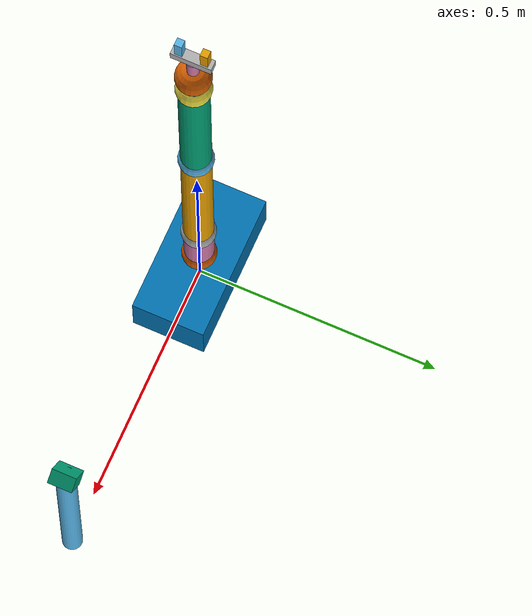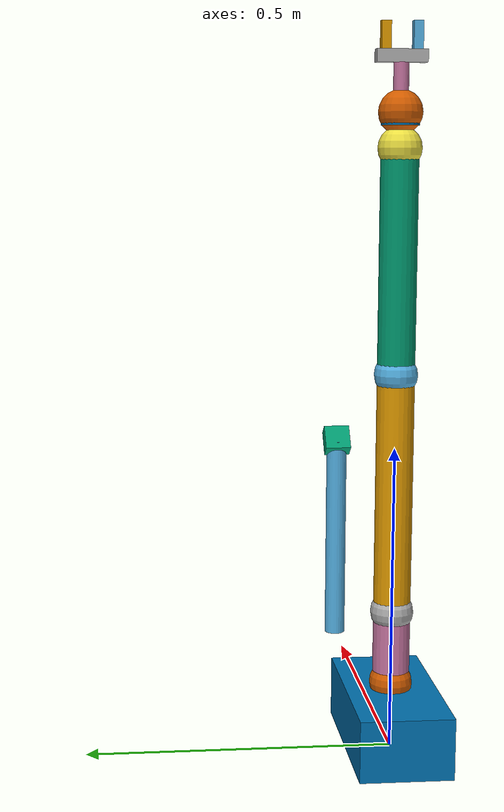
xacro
<?xml version="1.0"?>
<robot name="arm_robot" xmlns:xacro="http://www.ros.org/wiki/xacro">

    <link name="world"/>
    <joint name="world_joint" type="fixed">
        <parent link="world"/>
        <child link="robot_base"/>
        <origin xyz="0 0 0.05" rpy="0 0 0"/>
    </joint>

    <!-- Camera on a stand, fixed in the world, looking at the arm. -->
    <xacro:include filename="camera.xacro" />

    <link name="robot_base">
        <visual>
            <geometry>
                <box size="0.3 0.15 0.1"/>
            </geometry>
        </visual>
        <collision>
            <geometry>
                <box size="0.3 0.15 0.1"/>
            </geometry>
        </collision>
        <inertial>
            <mass value="0.5"/>
            <inertia ixx="0.001354" ixy="0" ixz="0"
                                    iyy="0.004167" iyz="0"
                                                   izz="0.004688"/>
        </inertial>
    </link>

    <link name="spin_link">
        <visual>
            <geometry>
                <sphere radius="0.035"/>
            </geometry>
        </visual>
        <collision>
            <geometry>
                <sphere radius="0.02"/>
            </geometry>
        </collision>
        <inertial>
            <mass value="0.05"/>
            <inertia ixx="0.0000245" ixy="0" ixz="0"
                                     iyy="0.0000245" iyz="0"
                                                     izz="0.0000245"/>
        </inertial>
    </link>

    <joint name="spin_main_joint" type="revolute">
        <parent link="robot_base"/>
        <child link="spin_link"/>
        <origin xyz="0 0 0.06" rpy="0 0 0"/>
        <axis xyz="0 0 1"/>
        <limit lower="-3.14159" upper="3.14159" effort="10" velocity="1"/>
        <dynamics damping="0.5" friction="0.1"/>
    </joint>

    <link name="spin_arm">
        <visual>
            <origin xyz="0 0 0.05" rpy="0 0 0"/>
            <geometry>
                <cylinder radius="0.03" length="0.1"/>
            </geometry>
        </visual>
        <collision>
            <origin xyz="0 0 0.04" rpy="0 0 0"/>
            <geometry>
                <cylinder radius="0.03" length="0.08"/>
            </geometry>
        </collision>
        <inertial>
            <origin xyz="0 0 0.05"/>
            <mass value="0.05"/>
            <inertia ixx="0.0000529" ixy="0" ixz="0"
                                     iyy="0.0000529" iyz="0"
                                                     izz="0.0000225"/>
        </inertial>
    </link>

    <!-- passive structural joint — always at 0, fixed for simulation -->
    <joint name="spin_arm_joint" type="fixed">
        <parent link="spin_link"/>
        <child link="spin_arm"/>
        <origin xyz="0 0 0.02" rpy="0 0 0"/>
    </joint>

    <link name="shoulder_link">
        <visual>
            <geometry>
                <sphere radius="0.035"/>
            </geometry>
        </visual>
        <collision>
            <geometry>
                <sphere radius="0.02"/>
            </geometry>
        </collision>
        <inertial>
            <mass value="0.05"/>
            <inertia ixx="0.0000245" ixy="0" ixz="0"
                                     iyy="0.0000245" iyz="0"
                                                     izz="0.0000245"/>
        </inertial>
    </link>

    <joint name="shoulder_main_joint" type="revolute">
        <parent link="spin_arm"/>
        <child link="shoulder_link"/>
        <origin xyz="0 0 0.1" rpy="0 0 0"/>
        <axis xyz="0 1 0"/>
        <limit lower="-1.57" upper="1.57" effort="10" velocity="1"/>
        <dynamics damping="0.5" friction="0.1"/>
    </joint>

    <link name="shoulder_arm">
        <visual>
            <origin xyz="0 0 0.15" rpy="0 0 0"/>
            <geometry>
                <cylinder radius="0.03" length="0.4"/>
            </geometry>
        </visual>
        <collision>
            <origin xyz="0 0 0.165" rpy="0 0 0"/>
            <geometry>
                <cylinder radius="0.03" length="0.33"/>
            </geometry>
        </collision>
        <inertial>
            <origin xyz="0 0 0.15"/>
            <mass value="0.15"/>
            <inertia ixx="0.002034" ixy="0" ixz="0"
                                    iyy="0.002034" iyz="0"
                                                   izz="0.0000675"/>
        </inertial>
    </link>

    <!-- passive structural joint — always at 0, fixed for simulation -->
    <joint name="shoulder_arm_joint" type="fixed">
        <parent link="shoulder_link"/>
        <child link="shoulder_arm"/>
        <origin xyz="0 0 0.04" rpy="0 0 0"/>
    </joint>

    <link name="elbow_link">
        <visual>
            <geometry>
                <sphere radius="0.035"/>
            </geometry>
        </visual>
        <collision>
            <geometry>
                <sphere radius="0.02"/>
            </geometry>
        </collision>
        <inertial>
            <mass value="0.05"/>
            <inertia ixx="0.0000245" ixy="0" ixz="0"
                                     iyy="0.0000245" iyz="0"
                                                     izz="0.0000245"/>
        </inertial>
    </link>

    <joint name="elbow_main_joint" type="revolute">
        <parent link="shoulder_arm"/>
        <child link="elbow_link"/>
        <origin xyz="0 0 0.35" rpy="0 0 0"/>
        <axis xyz="0 1 0"/>
        <limit lower="-2.356" upper="2.356" effort="10" velocity="1"/>
        <dynamics damping="0.5" friction="0.1"/>
    </joint>

    <link name="elbow_arm">
        <visual>
            <origin xyz="0 0 0.15" rpy="0 0 0"/>
            <geometry>
                <cylinder radius="0.03" length="0.35"/>
            </geometry>
        </visual>
        <collision>
            <origin xyz="0 0 0.15" rpy="0 0 0"/>
            <geometry>
                <cylinder radius="0.03" length="0.30"/>
            </geometry>
        </collision>
        <inertial>
            <origin xyz="0 0 0.15"/>
            <mass value="0.12"/>
            <inertia ixx="0.001252" ixy="0" ixz="0"
                                    iyy="0.001252" iyz="0"
                                                   izz="0.000054"/>
        </inertial>
    </link>

    <!-- passive structural joint — always at 0, fixed for simulation -->
    <joint name="elbow_arm_joint" type="fixed">
        <parent link="elbow_link"/>
        <child link="elbow_arm"/>
        <origin xyz="0 0 0.035" rpy="0 0 0"/>
    </joint>

     <link name="forearm_link">
        <visual>
            <geometry>
                <sphere radius="0.035"/>
            </geometry>
        </visual>
        <collision>
            <geometry>
                <sphere radius="0.02"/>
            </geometry>
        </collision>
        <inertial>
            <mass value="0.05"/>
            <inertia ixx="0.0000245" ixy="0" ixz="0"
                                     iyy="0.0000245" iyz="0"
                                                     izz="0.0000245"/>
        </inertial>
    </link>

    <joint name="forearm_main_joint" type="revolute">
        <parent link="elbow_arm"/>
        <child link="forearm_link"/>
        <origin xyz="0 0 0.32" rpy="0 0 0"/>
        <axis xyz="0 0 1"/>
        <limit lower="-3.14159" upper="3.14159" effort="10" velocity="1"/>
        <dynamics damping="0.5" friction="0.1"/>
    </joint>

    <link name="forearm_arm">
        <visual>
            <origin xyz="0 0 0.01" rpy="0 0 0"/>
            <geometry>
                <cylinder radius="0.03" length="0.02"/>
            </geometry>
        </visual>
        <collision>
            <origin xyz="0 0 0.01" rpy="0 0 0"/>
            <geometry>
                <cylinder radius="0.03" length="0.02"/>
            </geometry>
        </collision>
        <inertial>
            <origin xyz="0 0 0.01"/>
            <mass value="0.02"/>
            <inertia ixx="0.0000245" ixy="0" ixz="0"
                                     iyy="0.0000245" iyz="0"
                                                     izz="0.0000245"/>
        </inertial>
    </link>

    <joint name="forearm_arm_joint" type="fixed">
        <parent link="forearm_link"/>
        <child link="forearm_arm"/>
        <origin xyz="0 0 0.035" rpy="0 0 0"/>
    </joint>

    <link name="wrist_link">
        <visual>
            <geometry>
                <sphere radius="0.035"/>
            </geometry>
        </visual>
        <collision>
            <geometry>
                <sphere radius="0.02"/>
            </geometry>
        </collision>
        <inertial>
            <mass value="0.03"/>
            <inertia ixx="0.0000147" ixy="0" ixz="0"
                                     iyy="0.0000147" iyz="0"
                                                     izz="0.0000147"/>
        </inertial>
    </link>

    <joint name="wrist_main_joint" type="revolute">
        <parent link="forearm_arm"/>
        <child link="wrist_link"/>
        <origin xyz="0 0 0.02" rpy="0 0 0"/>
        <axis xyz="0 1 0"/>
        <limit lower="-2.094" upper="2.094" effort="10" velocity="1"/>
        <dynamics damping="0.5" friction="0.1"/>
    </joint>

    <link name="wrist_arm">
        <visual>
            <origin xyz="0 0 0.025" rpy="0 0 0"/>
            <geometry>
                <cylinder radius="0.012" length="0.05"/>
            </geometry>
        </visual>
        <collision>
            <origin xyz="0 0 0.025" rpy="0 0 0"/>
            <geometry>
                <cylinder radius="0.012" length="0.05"/>
            </geometry>
        </collision>
        <inertial>
            <origin xyz="0 0 0.025"/>
            <mass value="0.02"/>
            <inertia ixx="0.000004887" ixy="0" ixz="0"
                                       iyy="0.000004887" iyz="0"
                                                         izz="0.00000144"/>
        </inertial>
    </link>

    <!-- passive structural joint — always at 0, fixed for simulation -->
    <joint name="wrist_arm_joint" type="revolute">
        <parent link="wrist_link"/>
        <child link="wrist_arm"/>
        <origin xyz="0 0 0.025" rpy="0 0 0"/>
        <axis xyz="0 0 1"/>
        <limit lower="-3.14159" upper="3.14159" effort="10" velocity="1"/>
        <dynamics damping="0.5" friction="0.1"/>
    </joint>

    <link name="gripper_base">
        <visual>
            <origin xyz="0 0 0.05" rpy="0 0 0"/>
            <geometry>
                <box size="0.02 0.08 0.02"/>
            </geometry>
        </visual>
        <collision>
            <origin xyz="0 0 0.05" rpy="0 0 0"/>
            <geometry>
                <box size="0.02 0.02 0.02"/>
            </geometry>
        </collision>
        <inertial>
            <origin xyz="0 0 0.05"/>
            <mass value="0.03"/>
            <inertia ixx="0.000017" ixy="0" ixz="0"
                                    iyy="0.000002" iyz="0"
                                                   izz="0.000017"/>
        </inertial>
    </link>

    <joint name="gripper_base_joint" type="fixed">
        <parent link="wrist_arm"/>
        <child link="gripper_base"/>
        <origin xyz="0 0 0.01" rpy="0 0 0"/>
    </joint>

    <link name="gripper_left_finger">
        <visual>
            <origin xyz="0 0.025 0.035" rpy="0 0 0"/>
            <geometry>
                <box size="0.015 0.015 0.045"/>
            </geometry>
        </visual>
        <collision>
            <origin xyz="0 0.025 0.02" rpy="0 0 0"/>
            <geometry>
                <box size="0.015 0.015 0.045"/>
            </geometry>
        </collision>
        <inertial>
            <origin xyz="0 0.025 0.035"/>
            <mass value="0.01"/>
            <inertia ixx="0.000001875" ixy="0" ixz="0"
                                       iyy="0.000001875" iyz="0"
                                                         izz="0.000000375"/>
        </inertial>
    </link>

    <joint name="gripper_left_finger_joint" type="prismatic">
        <parent link="gripper_base"/>
        <child link="gripper_left_finger"/>
        <origin xyz="0 0 0.045" rpy="0 0 0"/>
        <axis xyz="0 1 0"/>
        <limit lower="-0.04" upper="0.04" effort="5" velocity="0.1"/>
        <dynamics damping="0.1" friction="0.05"/>
    </joint>

    <link name="gripper_right_finger">
        <visual>
            <origin xyz="0 -0.025 0.035" rpy="0 0 0"/>
            <geometry>
                <box size="0.015 0.015 0.045"/>
            </geometry>
        </visual>
        <collision>
            <origin xyz="0 -0.025 0.035" rpy="0 0 0"/>
            <geometry>
                <box size="0.015 0.015 0.045"/>
            </geometry>
        </collision>
        <inertial>
            <origin xyz="0 -0.025 0.035"/>
            <mass value="0.01"/>
            <inertia ixx="0.000001875" ixy="0" ixz="0"
                                       iyy="0.000001875" iyz="0"
                                                         izz="0.000000375"/>
        </inertial>
    </link>

    <joint name="gripper_right_finger_joint" type="prismatic">
        <parent link="gripper_base"/>
        <child link="gripper_right_finger"/>
        <origin xyz="0 0 0.045" rpy="0 0 0"/>
        <axis xyz="0 -1 0"/>
        <limit lower="-0.04" upper="0.04" effort="5" velocity="0.1"/>
        <dynamics damping="0.1" friction="0.05"/>
    </joint>

    <!-- ros2_control hardware interface (used by Gazebo simulation)  -->
    <ros2_control name="GazeboSystem" type="system">
        <hardware>
            <!-- Gazebo Classic 11 hardware interface (was mock_components/GenericSystem for RViz-only) -->
            <plugin>gazebo_ros2_control/GazeboSystem</plugin>
        </hardware>
        <joint name="shoulder_main_joint">
            <command_interface name="position">
                <param name="min">-1.57</param>
                <param name="max">1.57</param>
            </command_interface>
            <state_interface name="position"/>
            <state_interface name="velocity"/>
        </joint>
        <joint name="elbow_main_joint">
            <command_interface name="position">
                <param name="min">-2.356</param>
                <param name="max">2.356</param>
            </command_interface>
            <state_interface name="position"/>
            <state_interface name="velocity"/>
        </joint>
        <joint name="wrist_main_joint">
            <command_interface name="position">
                <param name="min">-2.094</param>
                <param name="max">2.094</param>
            </command_interface>
            <state_interface name="position"/>
            <state_interface name="velocity"/>
        </joint>
        <joint name="spin_main_joint">
            <command_interface name="position">
                <param name="min">-3.14159</param>
                <param name="max">3.14159</param>
            </command_interface>
            <state_interface name="position"/>
            <state_interface name="velocity"/>
        </joint>
        <joint name="forearm_main_joint">
            <command_interface name="position">
                <param name="min">-3.14159</param>
                <param name="max">3.14159</param>
            </command_interface>
            <state_interface name="position"/>
            <state_interface name="velocity"/>
        </joint>
        <joint name="wrist_arm_joint">
            <command_interface name="position">
                <param name="min">-3.14159</param>
                <param name="max">3.14159</param>
            </command_interface>
            <state_interface name="position"/>
            <state_interface name="velocity"/>
        </joint>
        <joint name="gripper_left_finger_joint">
            <command_interface name="position">
                <param name="min">-0.04</param>
                <param name="max">0.04</param>
            </command_interface>
            <state_interface name="position"/>
            <state_interface name="velocity"/>
        </joint>
        <joint name="gripper_right_finger_joint">
            <command_interface name="position">
                <param name="min">-0.04</param>
                <param name="max">0.04</param>
            </command_interface>
            <state_interface name="position"/>
            <state_interface name="velocity"/>
        </joint>
    </ros2_control>

    <!-- Gazebo plugin — loads controllers from controllers.yaml -->
    <gazebo>
        <plugin name="gazebo_ros2_control" filename="libgazebo_ros2_control.so">
            <parameters>$(find moveit_arm_package)/config/controllers.yaml</parameters>
        </plugin>
    </gazebo>

    <gazebo reference="gripper_left_finger">
        <mu1>10.0</mu1>
        <mu2>10.0</mu2>
        <kp>1e6</kp>
        <kd>100.0</kd>
        <sensor name="left_finger_contact" type="contact">
            <always_on>true</always_on>
            <update_rate>100</update_rate>
            <contact>
                <collision>gripper_left_finger_collision</collision>
            </contact>
            <plugin name="left_finger_bumper" filename="libgazebo_ros_bumper.so">
                <ros>
                    <remapping>bumper_states:=gripper_left_contact</remapping>
                </ros>
                <frame_name>world</frame_name>
            </plugin>
        </sensor>
    </gazebo>

    <gazebo reference="gripper_right_finger">
        <mu1>1.5</mu1>
        <mu2>1.5</mu2>
        <kp>1e4</kp>
        <kd>10.0</kd>
        <sensor name="right_finger_contact" type="contact">
            <always_on>true</always_on>
            <update_rate>100</update_rate>
            <contact>
                <collision>gripper_right_finger_collision</collision>
            </contact>
            <plugin name="right_finger_bumper" filename="libgazebo_ros_bumper.so">
                <ros>
                    <remapping>bumper_states:=gripper_right_contact</remapping>
                </ros>
                <frame_name>world</frame_name>
            </plugin>
        </sensor>
    </gazebo>

</robot>

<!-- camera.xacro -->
<robot xmlns:xacro="http://www.ros.org/wiki/xacro">

    <link name="camera_stand">
        <visual><geometry><cylinder radius="0.02" length="0.4"/></geometry></visual>
        <collision><geometry><cylinder radius="0.02" length="0.4"/></geometry></collision>
        <inertial>
            <mass value="0.5"/>
            <inertia ixx="0.001" ixy="0" ixz="0" iyy="0.001" iyz="0" izz="0.0001"/>
        </inertial>
    </link>

    <joint name="world_to_camera_stand" type="fixed">
        <parent link="world"/>
        <child link="camera_stand"/>
        <!-- Close-up rig: stand 0.4m tall, centered at z=0.2 so it rests on the
             ground at x=0.6, just in front of the block at x=0.35. -->
        <origin xyz="0.6 0 0.2" rpy="0 0 0"/>
    </joint>

    <link name="camera_link">
        <visual>
            <geometry><box size="0.05 0.05 0.03" /></geometry>
        </visual>
        <collision>
            <geometry><box size="0.05 0.05 0.03" /></geometry>
        </collision>
        <inertial>
            <mass value="0.1"/>
            <inertia ixx="0.0001" ixy="0" ixz="0" iyy="0.0001" iyz="0" izz="0.0001"/>
        </inertial>
    </link>

    <joint name="stand_to_camera" type="fixed">
        <parent link="camera_stand"/>
        <child link="camera_link"/>
        <origin xyz="0 0 0.2" rpy="0 0.9 3.14159"/>
    </joint>

    <!-- Optical frame: REP-103 convention (z forward, x right, y down) so the
         published image/camera_info align with the optical axis. -->
    <link name="camera_optical_frame"/>

    <joint name="camera_optical_joint" type="fixed">
        <parent link="camera_link"/>
        <child link="camera_optical_frame"/>
        <origin xyz="0 0 0" rpy="-1.5708 0 -1.5708"/>
    </joint>

    <gazebo reference="camera_link">
        <sensor name="camera" type="camera">
            <always_on>true</always_on>
            <update_rate>30</update_rate>
            <camera>
                <horizontal_fov>1.047</horizontal_fov>   <!-- ~60 degrees -->
                <image>
                    <width>640</width>
                    <height>480</height>
                    <format>R8G8B8</format>
                </image>
                <clip>
                    <near>0.05</near>
                    <far>10.0</far>
                </clip>
            </camera>
            <plugin name="camera_plugin" filename="libgazebo_ros_camera.so">
                <camera_name>camera</camera_name>
                <frame_name>camera_optical_frame</frame_name>
            </plugin>
        </sensor>
    </gazebo>

</robot>
